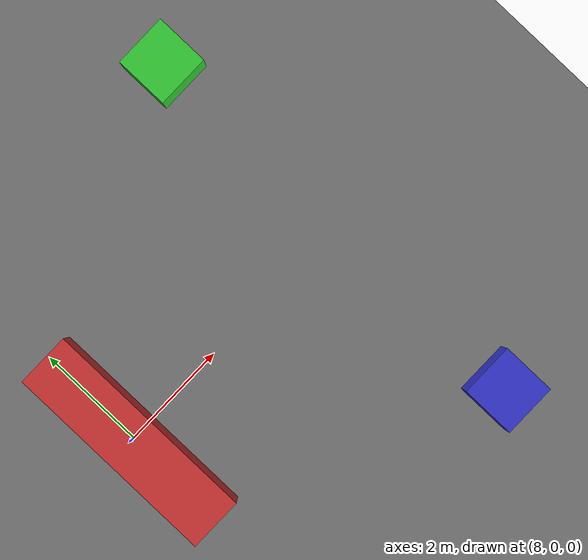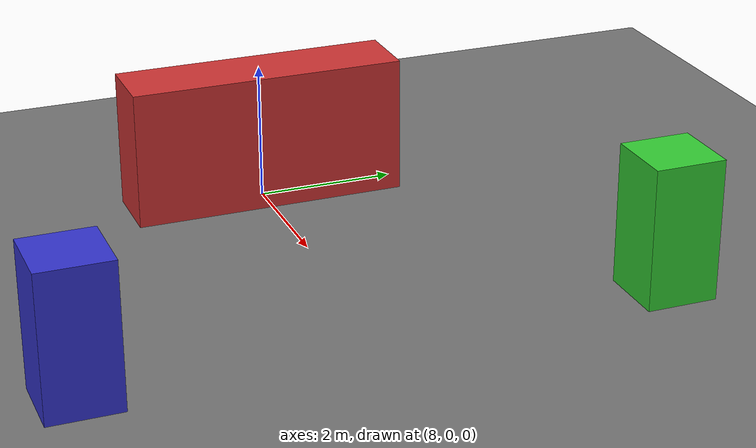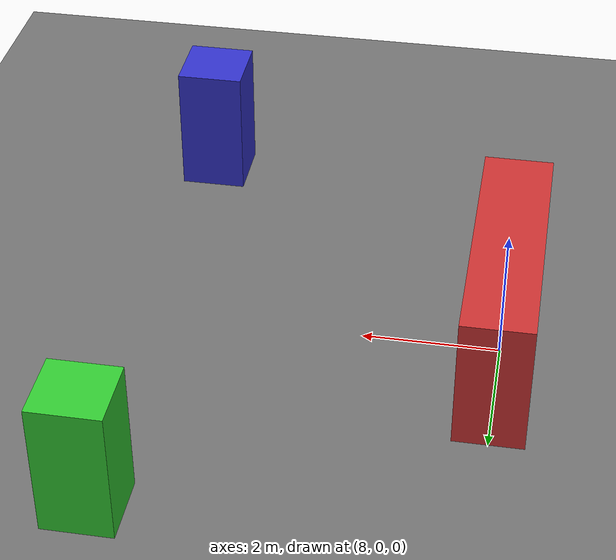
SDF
<?xml version="1.0" ?>
<sdf version="1.9">
  <world name="seyond_gpu_lidar_test">
    <plugin filename="gz-sim-physics-system" name="gz::sim::systems::Physics"/>
    <plugin filename="gz-sim-user-commands-system" name="gz::sim::systems::UserCommands"/>
    <plugin filename="gz-sim-scene-broadcaster-system" name="gz::sim::systems::SceneBroadcaster"/>
    <plugin filename="gz-sim-sensors-system" name="gz::sim::systems::Sensors">
      <render_engine>ogre2</render_engine>
    </plugin>

    <light name="sun" type="directional">
      <pose>0 0 10 0 0 0</pose>
      <diffuse>0.9 0.9 0.85 1</diffuse>
      <specular>0.2 0.2 0.2 1</specular>
      <direction>-0.5 0.2 -1.0</direction>
      <cast_shadows>true</cast_shadows>
    </light>

    <model name="ground">
      <static>true</static>
      <link name="link">
        <collision name="collision">
          <geometry><plane><normal>0 0 1</normal><size>80 80</size></plane></geometry>
        </collision>
        <visual name="visual">
          <geometry><plane><normal>0 0 1</normal><size>80 80</size></plane></geometry>
          <material><ambient>0.35 0.35 0.35 1</ambient><diffuse>0.45 0.45 0.45 1</diffuse></material>
        </visual>
      </link>
    </model>

    <model name="targets">
      <static>true</static>
      <pose>8 0 0 0 0 0</pose>
      <link name="box_1">
        <pose>0 0 1 0 0 0</pose>
        <collision name="collision"><geometry><box><size>1 4 2</size></box></geometry></collision>
        <visual name="visual"><geometry><box><size>1 4 2</size></box></geometry><material><diffuse>0.8 0.2 0.2 1</diffuse></material></visual>
      </link>
      <link name="box_2">
        <pose>5 4 1 0 0 0</pose>
        <collision name="collision"><geometry><box><size>1 1 2</size></box></geometry></collision>
        <visual name="visual"><geometry><box><size>1 1 2</size></box></geometry><material><diffuse>0.2 0.8 0.2 1</diffuse></material></visual>
      </link>
      <link name="box_3">
        <pose>5 -4 1 0 0 0</pose>
        <collision name="collision"><geometry><box><size>1 1 2</size></box></geometry></collision>
        <visual name="visual"><geometry><box><size>1 1 2</size></box></geometry><material><diffuse>0.2 0.2 0.8 1</diffuse></material></visual>
      </link>
    </model>

    <model name="seyond_robin_w_gpu_lidar_fixture">
      <static>true</static>
      <pose>0 0 1.2 0 0 0</pose>
      <link name="lidar_link">
        <sensor name="seyond_robin_w_sim" type="gpu_lidar">
          <always_on>true</always_on>
          <visualize>true</visualize>
          <update_rate>10</update_rate>
          <topic>/seyond_robin_w/scan</topic>
          <lidar>
            <scan>
              <horizontal>
                <samples>256</samples>
                <resolution>1</resolution>
                <min_angle>-1.0472</min_angle>
                <max_angle>1.0472</max_angle>
              </horizontal>
              <vertical>
                <samples>64</samples>
                <resolution>1</resolution>
                <min_angle>-0.6109</min_angle>
                <max_angle>0.6109</max_angle>
              </vertical>
            </scan>
            <range>
              <min>0.2</min>
              <max>80.0</max>
              <resolution>0.02</resolution>
            </range>
          </lidar>
        </sensor>
      </link>
    </model>
  </world>
</sdf>
